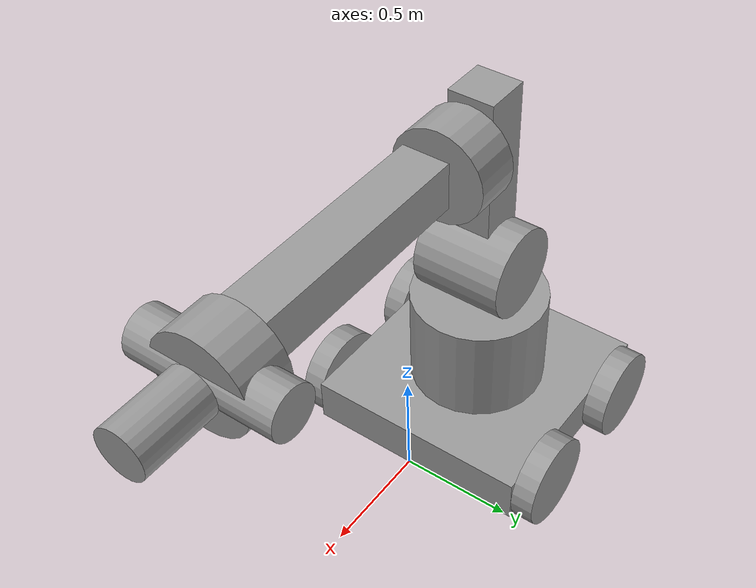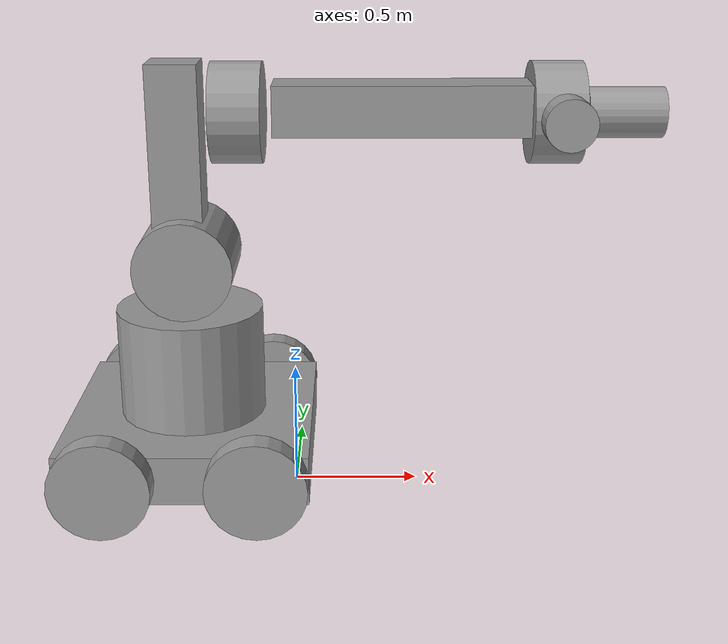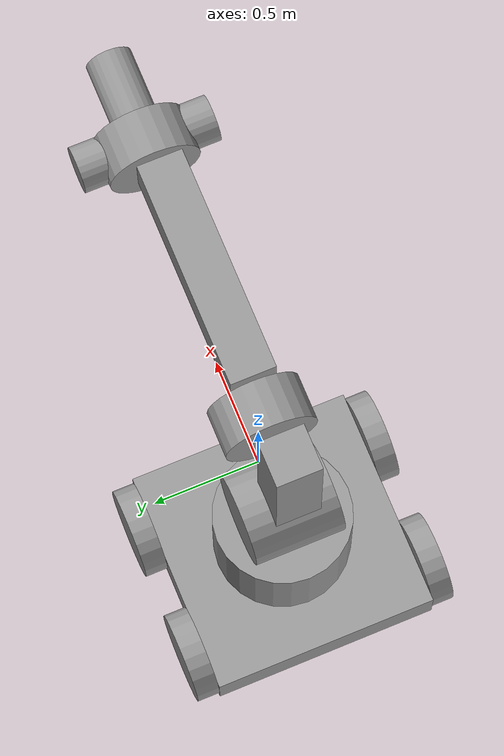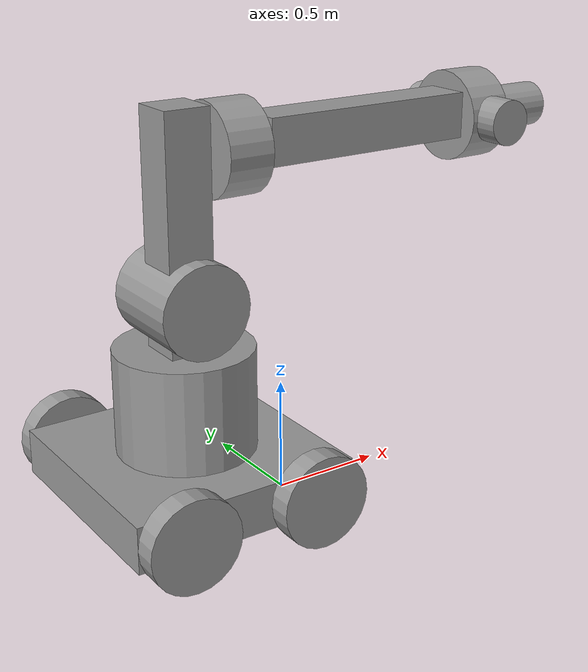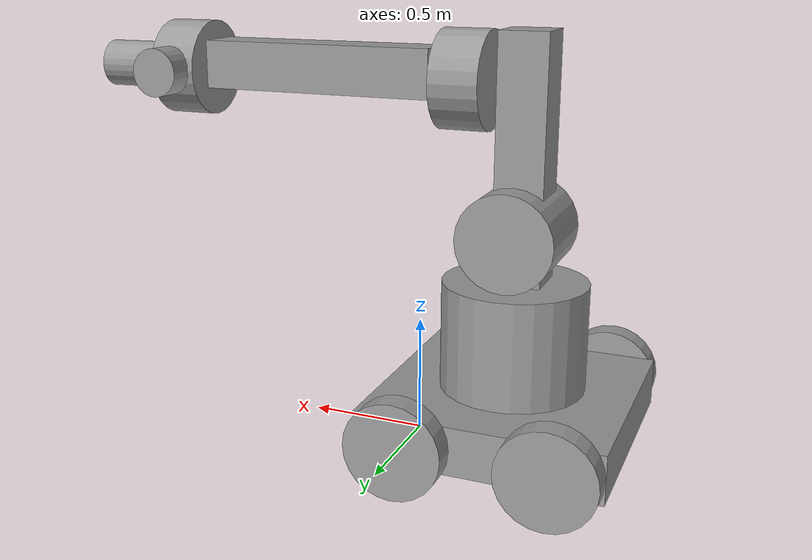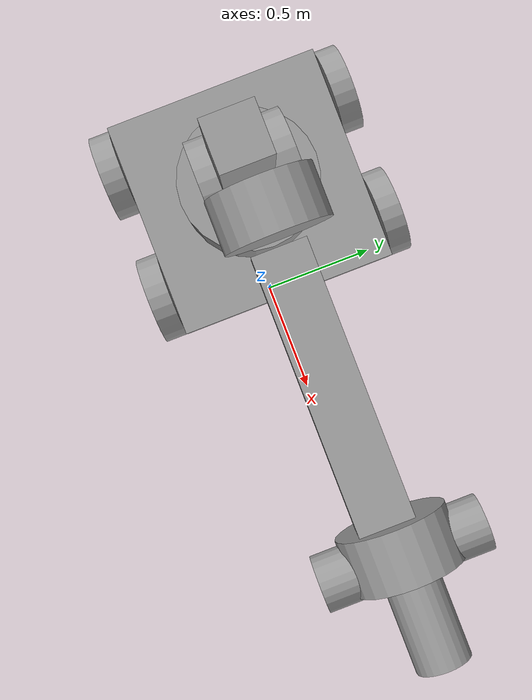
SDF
<?xml version='1.0'?>
<sdf version='1.6'>
  <model name='myModel'>
    <link name='link_0'>
      <pose frame=''>-0.433887 0.068014 0.2 0 -0 0</pose>
      <inertial>
        <mass>1</mass>
        <inertia>
          <ixx>0.166667</ixx>
          <ixy>0</ixy>
          <ixz>0</ixz>
          <iyy>0.166667</iyy>
          <iyz>0</iyz>
          <izz>0.166667</izz>
        </inertia>
        <pose frame=''>0 0 0 0 -0 0</pose>
      </inertial>
      <self_collide>0</self_collide>
      <kinematic>0</kinematic>
      <visual name='visual'>
        <pose frame=''>0 0 0 0 -0 0</pose>
        <geometry>
          <box>
            <size>1 1 0.2</size>
          </box>
        </geometry>
        <material>
          <lighting>1</lighting>
          <script>
            <uri>file://media/materials/scripts/gazebo.material</uri>
            <name>Gazebo/Grey</name>
          </script>
          <ambient>0.3 0.3 0.3 1</ambient>
          <diffuse>0.7 0.7 0.7 1</diffuse>
          <specular>0.01 0.01 0.01 1</specular>
          <emissive>0 0 0 1</emissive>
          <shader type='vertex'>
            <normal_map>__default__</normal_map>
          </shader>
        </material>
        <transparency>0</transparency>
        <cast_shadows>1</cast_shadows>
      </visual>
      <collision name='collision'>
        <laser_retro>0</laser_retro>
        <max_contacts>10</max_contacts>
        <pose frame=''>0 0 0 0 -0 0</pose>
        <geometry>
          <box>
            <size>1 1 0.2</size>
          </box>
        </geometry>
        <surface>
          <friction>
            <ode>
              <mu>1</mu>
              <mu2>1</mu2>
              <fdir1>0 0 0</fdir1>
              <slip1>0</slip1>
              <slip2>0</slip2>
            </ode>
            <torsional>
              <coefficient>1</coefficient>
              <patch_radius>0</patch_radius>
              <surface_radius>0</surface_radius>
              <use_patch_radius>1</use_patch_radius>
              <ode>
                <slip>0</slip>
              </ode>
            </torsional>
          </friction>
          <bounce>
            <restitution_coefficient>0</restitution_coefficient>
            <threshold>1e+06</threshold>
          </bounce>
          <contact>
            <collide_without_contact>0</collide_without_contact>
            <collide_without_contact_bitmask>1</collide_without_contact_bitmask>
            <collide_bitmask>1</collide_bitmask>
            <ode>
              <soft_cfm>0</soft_cfm>
              <soft_erp>0.2</soft_erp>
              <kp>1e+13</kp>
              <kd>1</kd>
              <max_vel>0.01</max_vel>
              <min_depth>0</min_depth>
            </ode>
            <bullet>
              <split_impulse>1</split_impulse>
              <split_impulse_penetration_threshold>-0.01</split_impulse_penetration_threshold>
              <soft_cfm>0</soft_cfm>
              <soft_erp>0.2</soft_erp>
              <kp>1e+13</kp>
              <kd>1</kd>
            </bullet>
          </contact>
        </surface>
      </collision>
    </link>
    <link name='link_0_0'>
      <pose frame=''>-0.433887 0.068014 0.5 0 -0 0</pose>
      <inertial>
        <mass>1</mass>
        <inertia>
          <ixx>0.145833</ixx>
          <ixy>0</ixy>
          <ixz>0</ixz>
          <iyy>0.145833</iyy>
          <iyz>0</iyz>
          <izz>0.125</izz>
        </inertia>
        <pose frame=''>0 0 0 0 -0 0</pose>
      </inertial>
      <self_collide>0</self_collide>
      <kinematic>0</kinematic>
      <visual name='visual'>
        <pose frame=''>0 0 0 0 -0 0</pose>
        <geometry>
          <cylinder>
            <radius>0.3</radius>
            <length>0.5</length>
          </cylinder>
        </geometry>
        <material>
          <lighting>1</lighting>
          <script>
            <uri>file://media/materials/scripts/gazebo.material</uri>
            <name>Gazebo/Grey</name>
          </script>
          <ambient>0.3 0.3 0.3 1</ambient>
          <diffuse>0.7 0.7 0.7 1</diffuse>
          <specular>0.01 0.01 0.01 1</specular>
          <emissive>0 0 0 1</emissive>
          <shader type='vertex'>
            <normal_map>__default__</normal_map>
          </shader>
        </material>
        <transparency>0</transparency>
        <cast_shadows>1</cast_shadows>
      </visual>
      <collision name='collision'>
        <laser_retro>0</laser_retro>
        <max_contacts>10</max_contacts>
        <pose frame=''>0 0 0 0 -0 0</pose>
        <geometry>
          <cylinder>
            <radius>0.3</radius>
            <length>0.5</length>
          </cylinder>
        </geometry>
        <surface>
          <friction>
            <ode>
              <mu>1</mu>
              <mu2>1</mu2>
              <fdir1>0 0 0</fdir1>
              <slip1>0</slip1>
              <slip2>0</slip2>
            </ode>
            <torsional>
              <coefficient>1</coefficient>
              <patch_radius>0</patch_radius>
              <surface_radius>0</surface_radius>
              <use_patch_radius>1</use_patch_radius>
              <ode>
                <slip>0</slip>
              </ode>
            </torsional>
          </friction>
          <bounce>
            <restitution_coefficient>0</restitution_coefficient>
            <threshold>1e+06</threshold>
          </bounce>
          <contact>
            <collide_without_contact>0</collide_without_contact>
            <collide_without_contact_bitmask>1</collide_without_contact_bitmask>
            <collide_bitmask>1</collide_bitmask>
            <ode>
              <soft_cfm>0</soft_cfm>
              <soft_erp>0.2</soft_erp>
              <kp>1e+13</kp>
              <kd>1</kd>
              <max_vel>0.01</max_vel>
              <min_depth>0</min_depth>
            </ode>
            <bullet>
              <split_impulse>1</split_impulse>
              <split_impulse_penetration_threshold>-0.01</split_impulse_penetration_threshold>
              <soft_cfm>0</soft_cfm>
              <soft_erp>0.2</soft_erp>
              <kp>1e+13</kp>
              <kd>1</kd>
            </bullet>
          </contact>
        </surface>
      </collision>
    </link>
    <link name='link_1'>
      <pose frame=''>-0.133887 -0.482005 0.2 1.5707 -0 0</pose>
      <inertial>
        <mass>1</mass>
        <inertia>
          <ixx>0.145833</ixx>
          <ixy>0</ixy>
          <ixz>0</ixz>
          <iyy>0.145833</iyy>
          <iyz>0</iyz>
          <izz>0.125</izz>
        </inertia>
        <pose frame=''>0 0 0 0 -0 0</pose>
      </inertial>
      <self_collide>0</self_collide>
      <kinematic>0</kinematic>
      <visual name='visual'>
        <pose frame=''>0 0 0 0 -0 0</pose>
        <geometry>
          <cylinder>
            <radius>0.2</radius>
            <length>0.1</length>
          </cylinder>
        </geometry>
        <material>
          <lighting>1</lighting>
          <script>
            <uri>file://media/materials/scripts/gazebo.material</uri>
            <name>Gazebo/Grey</name>
          </script>
          <ambient>0.3 0.3 0.3 1</ambient>
          <diffuse>0.7 0.7 0.7 1</diffuse>
          <specular>0.01 0.01 0.01 1</specular>
          <emissive>0 0 0 1</emissive>
          <shader type='vertex'>
            <normal_map>__default__</normal_map>
          </shader>
        </material>
        <transparency>0</transparency>
        <cast_shadows>1</cast_shadows>
      </visual>
      <collision name='collision'>
        <laser_retro>0</laser_retro>
        <max_contacts>10</max_contacts>
        <pose frame=''>0 0 0 0 -0 0</pose>
        <geometry>
          <cylinder>
            <radius>0.2</radius>
            <length>0.1</length>
          </cylinder>
        </geometry>
        <surface>
          <friction>
            <ode>
              <mu>1</mu>
              <mu2>1</mu2>
              <fdir1>0 0 0</fdir1>
              <slip1>0</slip1>
              <slip2>0</slip2>
            </ode>
            <torsional>
              <coefficient>1</coefficient>
              <patch_radius>0</patch_radius>
              <surface_radius>0</surface_radius>
              <use_patch_radius>1</use_patch_radius>
              <ode>
                <slip>0</slip>
              </ode>
            </torsional>
          </friction>
          <bounce>
            <restitution_coefficient>0</restitution_coefficient>
            <threshold>1e+06</threshold>
          </bounce>
          <contact>
            <collide_without_contact>0</collide_without_contact>
            <collide_without_contact_bitmask>1</collide_without_contact_bitmask>
            <collide_bitmask>1</collide_bitmask>
            <ode>
              <soft_cfm>0</soft_cfm>
              <soft_erp>0.2</soft_erp>
              <kp>1e+13</kp>
              <kd>1</kd>
              <max_vel>0.01</max_vel>
              <min_depth>0</min_depth>
            </ode>
            <bullet>
              <split_impulse>1</split_impulse>
              <split_impulse_penetration_threshold>-0.01</split_impulse_penetration_threshold>
              <soft_cfm>0</soft_cfm>
              <soft_erp>0.2</soft_erp>
              <kp>1e+13</kp>
              <kd>1</kd>
            </bullet>
          </contact>
        </surface>
      </collision>
    </link>
    <link name='link_1_0'>
      <pose frame=''>-0.433887 0.068014 0.950019 1.5707 -0 0</pose>
      <inertial>
        <mass>1</mass>
        <inertia>
          <ixx>0.145833</ixx>
          <ixy>0</ixy>
          <ixz>0</ixz>
          <iyy>0.145833</iyy>
          <iyz>0</iyz>
          <izz>0.125</izz>
        </inertia>
        <pose frame=''>0 0 0 0 -0 0</pose>
      </inertial>
      <self_collide>0</self_collide>
      <kinematic>0</kinematic>
      <visual name='visual'>
        <pose frame=''>0 0 0 0 -0 0</pose>
        <geometry>
          <cylinder>
            <radius>0.2</radius>
            <length>0.4</length>
          </cylinder>
        </geometry>
        <material>
          <lighting>1</lighting>
          <script>
            <uri>file://media/materials/scripts/gazebo.material</uri>
            <name>Gazebo/Grey</name>
          </script>
          <ambient>0.3 0.3 0.3 1</ambient>
          <diffuse>0.7 0.7 0.7 1</diffuse>
          <specular>0.01 0.01 0.01 1</specular>
          <emissive>0 0 0 1</emissive>
          <shader type='vertex'>
            <normal_map>__default__</normal_map>
          </shader>
        </material>
        <transparency>0</transparency>
        <cast_shadows>1</cast_shadows>
      </visual>
      <collision name='collision'>
        <laser_retro>0</laser_retro>
        <max_contacts>10</max_contacts>
        <pose frame=''>0 0 0 0 -0 0</pose>
        <geometry>
          <cylinder>
            <radius>0.2</radius>
            <length>0.4</length>
          </cylinder>
        </geometry>
        <surface>
          <friction>
            <ode>
              <mu>1</mu>
              <mu2>1</mu2>
              <fdir1>0 0 0</fdir1>
              <slip1>0</slip1>
              <slip2>0</slip2>
            </ode>
            <torsional>
              <coefficient>1</coefficient>
              <patch_radius>0</patch_radius>
              <surface_radius>0</surface_radius>
              <use_patch_radius>1</use_patch_radius>
              <ode>
                <slip>0</slip>
              </ode>
            </torsional>
          </friction>
          <bounce>
            <restitution_coefficient>0</restitution_coefficient>
            <threshold>1e+06</threshold>
          </bounce>
          <contact>
            <collide_without_contact>0</collide_without_contact>
            <collide_without_contact_bitmask>1</collide_without_contact_bitmask>
            <collide_bitmask>1</collide_bitmask>
            <ode>
              <soft_cfm>0</soft_cfm>
              <soft_erp>0.2</soft_erp>
              <kp>1e+13</kp>
              <kd>1</kd>
              <max_vel>0.01</max_vel>
              <min_depth>0</min_depth>
            </ode>
            <bullet>
              <split_impulse>1</split_impulse>
              <split_impulse_penetration_threshold>-0.01</split_impulse_penetration_threshold>
              <soft_cfm>0</soft_cfm>
              <soft_erp>0.2</soft_erp>
              <kp>1e+13</kp>
              <kd>1</kd>
            </bullet>
          </contact>
        </surface>
      </collision>
    </link>
    <link name='link_1_clone'>
      <pose frame=''>-0.733887 -0.482005 0.2 1.5707 -0 0</pose>
      <inertial>
        <mass>1</mass>
        <inertia>
          <ixx>0.145833</ixx>
          <ixy>0</ixy>
          <ixz>0</ixz>
          <iyy>0.145833</iyy>
          <iyz>0</iyz>
          <izz>0.125</izz>
        </inertia>
        <pose frame=''>0 0 0 0 -0 0</pose>
      </inertial>
      <self_collide>0</self_collide>
      <kinematic>0</kinematic>
      <visual name='visual'>
        <pose frame=''>0 0 0 0 -0 0</pose>
        <geometry>
          <cylinder>
            <radius>0.2</radius>
            <length>0.1</length>
          </cylinder>
        </geometry>
        <material>
          <lighting>1</lighting>
          <script>
            <uri>file://media/materials/scripts/gazebo.material</uri>
            <name>Gazebo/Grey</name>
          </script>
          <ambient>0.3 0.3 0.3 1</ambient>
          <diffuse>0.7 0.7 0.7 1</diffuse>
          <specular>0.01 0.01 0.01 1</specular>
          <emissive>0 0 0 1</emissive>
          <shader type='vertex'>
            <normal_map>__default__</normal_map>
          </shader>
        </material>
        <transparency>0</transparency>
        <cast_shadows>1</cast_shadows>
      </visual>
      <collision name='collision'>
        <laser_retro>0</laser_retro>
        <max_contacts>10</max_contacts>
        <pose frame=''>0 0 0 0 -0 0</pose>
        <geometry>
          <cylinder>
            <radius>0.2</radius>
            <length>0.1</length>
          </cylinder>
        </geometry>
        <surface>
          <friction>
            <ode>
              <mu>1</mu>
              <mu2>1</mu2>
              <fdir1>0 0 0</fdir1>
              <slip1>0</slip1>
              <slip2>0</slip2>
            </ode>
            <torsional>
              <coefficient>1</coefficient>
              <patch_radius>0</patch_radius>
              <surface_radius>0</surface_radius>
              <use_patch_radius>1</use_patch_radius>
              <ode>
                <slip>0</slip>
              </ode>
            </torsional>
          </friction>
          <bounce>
            <restitution_coefficient>0</restitution_coefficient>
            <threshold>1e+06</threshold>
          </bounce>
          <contact>
            <collide_without_contact>0</collide_without_contact>
            <collide_without_contact_bitmask>1</collide_without_contact_bitmask>
            <collide_bitmask>1</collide_bitmask>
            <ode>
              <soft_cfm>0</soft_cfm>
              <soft_erp>0.2</soft_erp>
              <kp>1e+13</kp>
              <kd>1</kd>
              <max_vel>0.01</max_vel>
              <min_depth>0</min_depth>
            </ode>
            <bullet>
              <split_impulse>1</split_impulse>
              <split_impulse_penetration_threshold>-0.01</split_impulse_penetration_threshold>
              <soft_cfm>0</soft_cfm>
              <soft_erp>0.2</soft_erp>
              <kp>1e+13</kp>
              <kd>1</kd>
            </bullet>
          </contact>
        </surface>
      </collision>
    </link>
    <link name='link_1_clone_clone'>
      <pose frame=''>-0.733887 0.618033 0.2 1.5707 -0 0</pose>
      <inertial>
        <mass>1</mass>
        <inertia>
          <ixx>0.145833</ixx>
          <ixy>0</ixy>
          <ixz>0</ixz>
          <iyy>0.145833</iyy>
          <iyz>0</iyz>
          <izz>0.125</izz>
        </inertia>
        <pose frame=''>0 0 0 0 -0 0</pose>
      </inertial>
      <self_collide>0</self_collide>
      <kinematic>0</kinematic>
      <visual name='visual'>
        <pose frame=''>0 0 0 0 -0 0</pose>
        <geometry>
          <cylinder>
            <radius>0.2</radius>
            <length>0.1</length>
          </cylinder>
        </geometry>
        <material>
          <lighting>1</lighting>
          <script>
            <uri>file://media/materials/scripts/gazebo.material</uri>
            <name>Gazebo/Grey</name>
          </script>
          <ambient>0.3 0.3 0.3 1</ambient>
          <diffuse>0.7 0.7 0.7 1</diffuse>
          <specular>0.01 0.01 0.01 1</specular>
          <emissive>0 0 0 1</emissive>
          <shader type='vertex'>
            <normal_map>__default__</normal_map>
          </shader>
        </material>
        <transparency>0</transparency>
        <cast_shadows>1</cast_shadows>
      </visual>
      <collision name='collision'>
        <laser_retro>0</laser_retro>
        <max_contacts>10</max_contacts>
        <pose frame=''>0 0 0 0 -0 0</pose>
        <geometry>
          <cylinder>
            <radius>0.2</radius>
            <length>0.1</length>
          </cylinder>
        </geometry>
        <surface>
          <friction>
            <ode>
              <mu>1</mu>
              <mu2>1</mu2>
              <fdir1>0 0 0</fdir1>
              <slip1>0</slip1>
              <slip2>0</slip2>
            </ode>
            <torsional>
              <coefficient>1</coefficient>
              <patch_radius>0</patch_radius>
              <surface_radius>0</surface_radius>
              <use_patch_radius>1</use_patch_radius>
              <ode>
                <slip>0</slip>
              </ode>
            </torsional>
          </friction>
          <bounce>
            <restitution_coefficient>0</restitution_coefficient>
            <threshold>1e+06</threshold>
          </bounce>
          <contact>
            <collide_without_contact>0</collide_without_contact>
            <collide_without_contact_bitmask>1</collide_without_contact_bitmask>
            <collide_bitmask>1</collide_bitmask>
            <ode>
              <soft_cfm>0</soft_cfm>
              <soft_erp>0.2</soft_erp>
              <kp>1e+13</kp>
              <kd>1</kd>
              <max_vel>0.01</max_vel>
              <min_depth>0</min_depth>
            </ode>
            <bullet>
              <split_impulse>1</split_impulse>
              <split_impulse_penetration_threshold>-0.01</split_impulse_penetration_threshold>
              <soft_cfm>0</soft_cfm>
              <soft_erp>0.2</soft_erp>
              <kp>1e+13</kp>
              <kd>1</kd>
            </bullet>
          </contact>
        </surface>
      </collision>
    </link>
    <link name='link_1_clone_clone_clone'>
      <pose frame=''>-0.133887 0.618033 0.2 1.5707 -0 0</pose>
      <inertial>
        <mass>1</mass>
        <inertia>
          <ixx>0.145833</ixx>
          <ixy>0</ixy>
          <ixz>0</ixz>
          <iyy>0.145833</iyy>
          <iyz>0</iyz>
          <izz>0.125</izz>
        </inertia>
        <pose frame=''>0 0 0 0 -0 0</pose>
      </inertial>
      <self_collide>0</self_collide>
      <kinematic>0</kinematic>
      <visual name='visual'>
        <pose frame=''>0 0 0 0 -0 0</pose>
        <geometry>
          <cylinder>
            <radius>0.2</radius>
            <length>0.1</length>
          </cylinder>
        </geometry>
        <material>
          <lighting>1</lighting>
          <script>
            <uri>file://media/materials/scripts/gazebo.material</uri>
            <name>Gazebo/Grey</name>
          </script>
          <ambient>0.3 0.3 0.3 1</ambient>
          <diffuse>0.7 0.7 0.7 1</diffuse>
          <specular>0.01 0.01 0.01 1</specular>
          <emissive>0 0 0 1</emissive>
          <shader type='vertex'>
            <normal_map>__default__</normal_map>
          </shader>
        </material>
        <transparency>0</transparency>
        <cast_shadows>1</cast_shadows>
      </visual>
      <collision name='collision'>
        <laser_retro>0</laser_retro>
        <max_contacts>10</max_contacts>
        <pose frame=''>0 0 0 0 -0 0</pose>
        <geometry>
          <cylinder>
            <radius>0.2</radius>
            <length>0.1</length>
          </cylinder>
        </geometry>
        <surface>
          <friction>
            <ode>
              <mu>1</mu>
              <mu2>1</mu2>
              <fdir1>0 0 0</fdir1>
              <slip1>0</slip1>
              <slip2>0</slip2>
            </ode>
            <torsional>
              <coefficient>1</coefficient>
              <patch_radius>0</patch_radius>
              <surface_radius>0</surface_radius>
              <use_patch_radius>1</use_patch_radius>
              <ode>
                <slip>0</slip>
              </ode>
            </torsional>
          </friction>
          <bounce>
            <restitution_coefficient>0</restitution_coefficient>
            <threshold>1e+06</threshold>
          </bounce>
          <contact>
            <collide_without_contact>0</collide_without_contact>
            <collide_without_contact_bitmask>1</collide_without_contact_bitmask>
            <collide_bitmask>1</collide_bitmask>
            <ode>
              <soft_cfm>0</soft_cfm>
              <soft_erp>0.2</soft_erp>
              <kp>1e+13</kp>
              <kd>1</kd>
              <max_vel>0.01</max_vel>
              <min_depth>0</min_depth>
            </ode>
            <bullet>
              <split_impulse>1</split_impulse>
              <split_impulse_penetration_threshold>-0.01</split_impulse_penetration_threshold>
              <soft_cfm>0</soft_cfm>
              <soft_erp>0.2</soft_erp>
              <kp>1e+13</kp>
              <kd>1</kd>
            </bullet>
          </contact>
        </surface>
      </collision>
    </link>
    <link name='link_2'>
      <pose frame=''>-0.453887 0.048014 1.25 0 -0 0</pose>
      <inertial>
        <mass>1</mass>
        <inertia>
          <ixx>0.166667</ixx>
          <ixy>0</ixy>
          <ixz>0</ixz>
          <iyy>0.166667</iyy>
          <iyz>0</iyz>
          <izz>0.166667</izz>
        </inertia>
        <pose frame=''>0 0 0 0 -0 0</pose>
      </inertial>
      <self_collide>0</self_collide>
      <kinematic>0</kinematic>
      <visual name='visual'>
        <pose frame=''>0 0 0 0 -0 0</pose>
        <geometry>
          <box>
            <size>0.2 0.2 1</size>
          </box>
        </geometry>
        <material>
          <lighting>1</lighting>
          <script>
            <uri>file://media/materials/scripts/gazebo.material</uri>
            <name>Gazebo/Grey</name>
          </script>
          <ambient>0.3 0.3 0.3 1</ambient>
          <diffuse>0.7 0.7 0.7 1</diffuse>
          <specular>0.01 0.01 0.01 1</specular>
          <emissive>0 0 0 1</emissive>
          <shader type='vertex'>
            <normal_map>__default__</normal_map>
          </shader>
        </material>
        <transparency>0</transparency>
        <cast_shadows>1</cast_shadows>
      </visual>
      <collision name='collision'>
        <laser_retro>0</laser_retro>
        <max_contacts>10</max_contacts>
        <pose frame=''>0 0 0 0 -0 0</pose>
        <geometry>
          <box>
            <size>0.2 0.2 1</size>
          </box>
        </geometry>
        <surface>
          <friction>
            <ode>
              <mu>1</mu>
              <mu2>1</mu2>
              <fdir1>0 0 0</fdir1>
              <slip1>0</slip1>
              <slip2>0</slip2>
            </ode>
            <torsional>
              <coefficient>1</coefficient>
              <patch_radius>0</patch_radius>
              <surface_radius>0</surface_radius>
              <use_patch_radius>1</use_patch_radius>
              <ode>
                <slip>0</slip>
              </ode>
            </torsional>
          </friction>
          <bounce>
            <restitution_coefficient>0</restitution_coefficient>
            <threshold>1e+06</threshold>
          </bounce>
          <contact>
            <collide_without_contact>0</collide_without_contact>
            <collide_without_contact_bitmask>1</collide_without_contact_bitmask>
            <collide_bitmask>1</collide_bitmask>
            <ode>
              <soft_cfm>0</soft_cfm>
              <soft_erp>0.2</soft_erp>
              <kp>1e+13</kp>
              <kd>1</kd>
              <max_vel>0.01</max_vel>
              <min_depth>0</min_depth>
            </ode>
            <bullet>
              <split_impulse>1</split_impulse>
              <split_impulse_penetration_threshold>-0.01</split_impulse_penetration_threshold>
              <soft_cfm>0</soft_cfm>
              <soft_erp>0.2</soft_erp>
              <kp>1e+13</kp>
              <kd>1</kd>
            </bullet>
          </contact>
        </surface>
      </collision>
    </link>
    <link name='link_3'>
      <pose frame=''>-0.213868 0.068014 1.54999 7e-06 1.5707 7e-06</pose>
      <inertial>
        <mass>1</mass>
        <inertia>
          <ixx>0.145833</ixx>
          <ixy>0</ixy>
          <ixz>0</ixz>
          <iyy>0.145833</iyy>
          <iyz>0</iyz>
          <izz>0.125</izz>
        </inertia>
        <pose frame=''>0 0 0 0 -0 0</pose>
      </inertial>
      <self_collide>0</self_collide>
      <kinematic>0</kinematic>
      <visual name='visual'>
        <pose frame=''>0 0 0 0 -0 0</pose>
        <geometry>
          <cylinder>
            <radius>0.2</radius>
            <length>0.2</length>
          </cylinder>
        </geometry>
        <material>
          <lighting>1</lighting>
          <script>
            <uri>file://media/materials/scripts/gazebo.material</uri>
            <name>Gazebo/Grey</name>
          </script>
          <ambient>0.3 0.3 0.3 1</ambient>
          <diffuse>0.7 0.7 0.7 1</diffuse>
          <specular>0.01 0.01 0.01 1</specular>
          <emissive>0 0 0 1</emissive>
          <shader type='vertex'>
            <normal_map>__default__</normal_map>
          </shader>
        </material>
        <transparency>0</transparency>
        <cast_shadows>1</cast_shadows>
      </visual>
      <collision name='collision'>
        <laser_retro>0</laser_retro>
        <max_contacts>10</max_contacts>
        <pose frame=''>0 0 0 0 -0 0</pose>
        <geometry>
          <cylinder>
            <radius>0.2</radius>
            <length>0.2</length>
          </cylinder>
        </geometry>
        <surface>
          <friction>
            <ode>
              <mu>1</mu>
              <mu2>1</mu2>
              <fdir1>0 0 0</fdir1>
              <slip1>0</slip1>
              <slip2>0</slip2>
            </ode>
            <torsional>
              <coefficient>1</coefficient>
              <patch_radius>0</patch_radius>
              <surface_radius>0</surface_radius>
              <use_patch_radius>1</use_patch_radius>
              <ode>
                <slip>0</slip>
              </ode>
            </torsional>
          </friction>
          <bounce>
            <restitution_coefficient>0</restitution_coefficient>
            <threshold>1e+06</threshold>
          </bounce>
          <contact>
            <collide_without_contact>0</collide_without_contact>
            <collide_without_contact_bitmask>1</collide_without_contact_bitmask>
            <collide_bitmask>1</collide_bitmask>
            <ode>
              <soft_cfm>0</soft_cfm>
              <soft_erp>0.2</soft_erp>
              <kp>1e+13</kp>
              <kd>1</kd>
              <max_vel>0.01</max_vel>
              <min_depth>0</min_depth>
            </ode>
            <bullet>
              <split_impulse>1</split_impulse>
              <split_impulse_penetration_threshold>-0.01</split_impulse_penetration_threshold>
              <soft_cfm>0</soft_cfm>
              <soft_erp>0.2</soft_erp>
              <kp>1e+13</kp>
              <kd>1</kd>
            </bullet>
          </contact>
        </surface>
      </collision>
    </link>
    <link name='link_4'>
      <pose frame=''>0.426161 0.048014 1.56999 7e-06 1.5707 7e-06</pose>
      <inertial>
        <mass>1</mass>
        <inertia>
          <ixx>0.166667</ixx>
          <ixy>0</ixy>
          <ixz>0</ixz>
          <iyy>0.166667</iyy>
          <iyz>0</iyz>
          <izz>0.166667</izz>
        </inertia>
        <pose frame=''>0 0 0 0 -0 0</pose>
      </inertial>
      <self_collide>0</self_collide>
      <kinematic>0</kinematic>
      <visual name='visual'>
        <pose frame=''>0 0 0 0 -0 0</pose>
        <geometry>
          <box>
            <size>0.2 0.2 1</size>
          </box>
        </geometry>
        <material>
          <lighting>1</lighting>
          <script>
            <uri>file://media/materials/scripts/gazebo.material</uri>
            <name>Gazebo/Grey</name>
          </script>
          <ambient>0.3 0.3 0.3 1</ambient>
          <diffuse>0.7 0.7 0.7 1</diffuse>
          <specular>0.01 0.01 0.01 1</specular>
          <emissive>0 0 0 1</emissive>
          <shader type='vertex'>
            <normal_map>__default__</normal_map>
          </shader>
        </material>
        <transparency>0</transparency>
        <cast_shadows>1</cast_shadows>
      </visual>
      <collision name='collision'>
        <laser_retro>0</laser_retro>
        <max_contacts>10</max_contacts>
        <pose frame=''>0 0 0 0 -0 0</pose>
        <geometry>
          <box>
            <size>0.2 0.2 1</size>
          </box>
        </geometry>
        <surface>
          <friction>
            <ode>
              <mu>1</mu>
              <mu2>1</mu2>
              <fdir1>0 0 0</fdir1>
              <slip1>0</slip1>
              <slip2>0</slip2>
            </ode>
            <torsional>
              <coefficient>1</coefficient>
              <patch_radius>0</patch_radius>
              <surface_radius>0</surface_radius>
              <use_patch_radius>1</use_patch_radius>
              <ode>
                <slip>0</slip>
              </ode>
            </torsional>
          </friction>
          <bounce>
            <restitution_coefficient>0</restitution_coefficient>
            <threshold>1e+06</threshold>
          </bounce>
          <contact>
            <collide_without_contact>0</collide_without_contact>
            <collide_without_contact_bitmask>1</collide_without_contact_bitmask>
            <collide_bitmask>1</collide_bitmask>
            <ode>
              <soft_cfm>0</soft_cfm>
              <soft_erp>0.2</soft_erp>
              <kp>1e+13</kp>
              <kd>1</kd>
              <max_vel>0.01</max_vel>
              <min_depth>0</min_depth>
            </ode>
            <bullet>
              <split_impulse>1</split_impulse>
              <split_impulse_penetration_threshold>-0.01</split_impulse_penetration_threshold>
              <soft_cfm>0</soft_cfm>
              <soft_erp>0.2</soft_erp>
              <kp>1e+13</kp>
              <kd>1</kd>
            </bullet>
          </contact>
        </surface>
      </collision>
    </link>
    <link name='link_5'>
      <pose frame=''>1.02619 0.068014 1.54999 7e-06 1.5707 7e-06</pose>
      <inertial>
        <mass>1</mass>
        <inertia>
          <ixx>0.145833</ixx>
          <ixy>0</ixy>
          <ixz>0</ixz>
          <iyy>0.145833</iyy>
          <iyz>0</iyz>
          <izz>0.125</izz>
        </inertia>
        <pose frame=''>0 0 0 0 -0 0</pose>
      </inertial>
      <self_collide>0</self_collide>
      <kinematic>0</kinematic>
      <visual name='visual'>
        <pose frame=''>0 0 0 0 -0 0</pose>
        <geometry>
          <cylinder>
            <radius>0.2</radius>
            <length>0.2</length>
          </cylinder>
        </geometry>
        <material>
          <lighting>1</lighting>
          <script>
            <uri>file://media/materials/scripts/gazebo.material</uri>
            <name>Gazebo/Grey</name>
          </script>
          <ambient>0.3 0.3 0.3 1</ambient>
          <diffuse>0.7 0.7 0.7 1</diffuse>
          <specular>0.01 0.01 0.01 1</specular>
          <emissive>0 0 0 1</emissive>
          <shader type='vertex'>
            <normal_map>__default__</normal_map>
          </shader>
        </material>
        <transparency>0</transparency>
        <cast_shadows>1</cast_shadows>
      </visual>
      <collision name='collision'>
        <laser_retro>0</laser_retro>
        <max_contacts>10</max_contacts>
        <pose frame=''>0 0 0 0 -0 0</pose>
        <geometry>
          <cylinder>
            <radius>0.2</radius>
            <length>0.2</length>
          </cylinder>
        </geometry>
        <surface>
          <friction>
            <ode>
              <mu>1</mu>
              <mu2>1</mu2>
              <fdir1>0 0 0</fdir1>
              <slip1>0</slip1>
              <slip2>0</slip2>
            </ode>
            <torsional>
              <coefficient>1</coefficient>
              <patch_radius>0</patch_radius>
              <surface_radius>0</surface_radius>
              <use_patch_radius>1</use_patch_radius>
              <ode>
                <slip>0</slip>
              </ode>
            </torsional>
          </friction>
          <bounce>
            <restitution_coefficient>0</restitution_coefficient>
            <threshold>1e+06</threshold>
          </bounce>
          <contact>
            <collide_without_contact>0</collide_without_contact>
            <collide_without_contact_bitmask>1</collide_without_contact_bitmask>
            <collide_bitmask>1</collide_bitmask>
            <ode>
              <soft_cfm>0</soft_cfm>
              <soft_erp>0.2</soft_erp>
              <kp>1e+13</kp>
              <kd>1</kd>
              <max_vel>0.01</max_vel>
              <min_depth>0</min_depth>
            </ode>
            <bullet>
              <split_impulse>1</split_impulse>
              <split_impulse_penetration_threshold>-0.01</split_impulse_penetration_threshold>
              <soft_cfm>0</soft_cfm>
              <soft_erp>0.2</soft_erp>
              <kp>1e+13</kp>
              <kd>1</kd>
            </bullet>
          </contact>
        </surface>
      </collision>
    </link>
    <link name='link_6'>
      <pose frame=''>1.04619 0.068014 1.54999 1.5707 -0 0</pose>
      <inertial>
        <mass>1</mass>
        <inertia>
          <ixx>0.145833</ixx>
          <ixy>0</ixy>
          <ixz>0</ixz>
          <iyy>0.145833</iyy>
          <iyz>0</iyz>
          <izz>0.125</izz>
        </inertia>
        <pose frame=''>0 0 0 0 -0 0</pose>
      </inertial>
      <self_collide>0</self_collide>
      <kinematic>0</kinematic>
      <visual name='visual'>
        <pose frame=''>0 0 0 0 -0 0</pose>
        <geometry>
          <cylinder>
            <radius>0.1</radius>
            <length>0.6</length>
          </cylinder>
        </geometry>
        <material>
          <lighting>1</lighting>
          <script>
            <uri>file://media/materials/scripts/gazebo.material</uri>
            <name>Gazebo/Grey</name>
          </script>
          <ambient>0.3 0.3 0.3 1</ambient>
          <diffuse>0.7 0.7 0.7 1</diffuse>
          <specular>0.01 0.01 0.01 1</specular>
          <emissive>0 0 0 1</emissive>
          <shader type='vertex'>
            <normal_map>__default__</normal_map>
          </shader>
        </material>
        <transparency>0</transparency>
        <cast_shadows>1</cast_shadows>
      </visual>
      <collision name='collision'>
        <laser_retro>0</laser_retro>
        <max_contacts>10</max_contacts>
        <pose frame=''>0 0 0 0 -0 0</pose>
        <geometry>
          <cylinder>
            <radius>0.1</radius>
            <length>0.6</length>
          </cylinder>
        </geometry>
        <surface>
          <friction>
            <ode>
              <mu>1</mu>
              <mu2>1</mu2>
              <fdir1>0 0 0</fdir1>
              <slip1>0</slip1>
              <slip2>0</slip2>
            </ode>
            <torsional>
              <coefficient>1</coefficient>
              <patch_radius>0</patch_radius>
              <surface_radius>0</surface_radius>
              <use_patch_radius>1</use_patch_radius>
              <ode>
                <slip>0</slip>
              </ode>
            </torsional>
          </friction>
          <bounce>
            <restitution_coefficient>0</restitution_coefficient>
            <threshold>1e+06</threshold>
          </bounce>
          <contact>
            <collide_without_contact>0</collide_without_contact>
            <collide_without_contact_bitmask>1</collide_without_contact_bitmask>
            <collide_bitmask>1</collide_bitmask>
            <ode>
              <soft_cfm>0</soft_cfm>
              <soft_erp>0.2</soft_erp>
              <kp>1e+13</kp>
              <kd>1</kd>
              <max_vel>0.01</max_vel>
              <min_depth>0</min_depth>
            </ode>
            <bullet>
              <split_impulse>1</split_impulse>
              <split_impulse_penetration_threshold>-0.01</split_impulse_penetration_threshold>
              <soft_cfm>0</soft_cfm>
              <soft_erp>0.2</soft_erp>
              <kp>1e+13</kp>
              <kd>1</kd>
            </bullet>
          </contact>
        </surface>
      </collision>
    </link>
    <link name='link_7'>
      <pose frame=''>1.29888 0.066312 1.54999 7e-06 1.5707 7e-06</pose>
      <inertial>
        <mass>1</mass>
        <inertia>
          <ixx>0.145833</ixx>
          <ixy>0</ixy>
          <ixz>0</ixz>
          <iyy>0.145833</iyy>
          <iyz>0</iyz>
          <izz>0.125</izz>
        </inertia>
        <pose frame=''>0 0 0 0 -0 0</pose>
      </inertial>
      <self_collide>0</self_collide>
      <kinematic>0</kinematic>
      <visual name='visual'>
        <pose frame=''>0 0 0 0 -0 0</pose>
        <geometry>
          <cylinder>
            <radius>0.1</radius>
            <length>0.3</length>
          </cylinder>
        </geometry>
        <material>
          <lighting>1</lighting>
          <script>
            <uri>file://media/materials/scripts/gazebo.material</uri>
            <name>Gazebo/Grey</name>
          </script>
          <ambient>0.3 0.3 0.3 1</ambient>
          <diffuse>0.7 0.7 0.7 1</diffuse>
          <specular>0.01 0.01 0.01 1</specular>
          <emissive>0 0 0 1</emissive>
          <shader type='vertex'>
            <normal_map>__default__</normal_map>
          </shader>
        </material>
        <transparency>0</transparency>
        <cast_shadows>1</cast_shadows>
      </visual>
      <collision name='collision'>
        <laser_retro>0</laser_retro>
        <max_contacts>10</max_contacts>
        <pose frame=''>0 0 0 0 -0 0</pose>
        <geometry>
          <cylinder>
            <radius>0.1</radius>
            <length>0.3</length>
          </cylinder>
        </geometry>
        <surface>
          <friction>
            <ode>
              <mu>1</mu>
              <mu2>1</mu2>
              <fdir1>0 0 0</fdir1>
              <slip1>0</slip1>
              <slip2>0</slip2>
            </ode>
            <torsional>
              <coefficient>1</coefficient>
              <patch_radius>0</patch_radius>
              <surface_radius>0</surface_radius>
              <use_patch_radius>1</use_patch_radius>
              <ode>
                <slip>0</slip>
              </ode>
            </torsional>
          </friction>
          <bounce>
            <restitution_coefficient>0</restitution_coefficient>
            <threshold>1e+06</threshold>
          </bounce>
          <contact>
            <collide_without_contact>0</collide_without_contact>
            <collide_without_contact_bitmask>1</collide_without_contact_bitmask>
            <collide_bitmask>1</collide_bitmask>
            <ode>
              <soft_cfm>0</soft_cfm>
              <soft_erp>0.2</soft_erp>
              <kp>1e+13</kp>
              <kd>1</kd>
              <max_vel>0.01</max_vel>
              <min_depth>0</min_depth>
            </ode>
            <bullet>
              <split_impulse>1</split_impulse>
              <split_impulse_penetration_threshold>-0.01</split_impulse_penetration_threshold>
              <soft_cfm>0</soft_cfm>
              <soft_erp>0.2</soft_erp>
              <kp>1e+13</kp>
              <kd>1</kd>
            </bullet>
          </contact>
        </surface>
      </collision>
    </link>
    <joint name='link_0_0_JOINT_1' type='revolute'>
      <parent>link_0_0</parent>
      <child>link_1_0</child>
      <pose frame=''>0 0 0 0 -0 0</pose>
      <axis>
        <xyz>0 0 1</xyz>
        <use_parent_model_frame>0</use_parent_model_frame>
        <limit>
          <lower>-1.79769e+308</lower>
          <upper>1.79769e+308</upper>
          <effort>-1</effort>
          <velocity>-1</velocity>
        </limit>
        <dynamics>
          <spring_reference>0</spring_reference>
          <spring_stiffness>0</spring_stiffness>
          <damping>0</damping>
          <friction>0</friction>
        </dynamics>
      </axis>
      <physics>
        <ode>
          <limit>
            <cfm>0</cfm>
            <erp>0.2</erp>
          </limit>
          <suspension>
            <cfm>0</cfm>
            <erp>0.2</erp>
          </suspension>
        </ode>
      </physics>
    </joint>
    <joint name='link_0_JOINT_0_0' type='revolute'>
      <parent>link_0</parent>
      <child>link_0_0</child>
      <pose frame=''>0 0 0 0 -0 0</pose>
      <axis>
        <xyz>0 0 1</xyz>
        <use_parent_model_frame>0</use_parent_model_frame>
        <limit>
          <lower>-1.79769e+308</lower>
          <upper>1.79769e+308</upper>
          <effort>-1</effort>
          <velocity>-1</velocity>
        </limit>
        <dynamics>
          <spring_reference>0</spring_reference>
          <spring_stiffness>0</spring_stiffness>
          <damping>0</damping>
          <friction>0</friction>
        </dynamics>
      </axis>
      <physics>
        <ode>
          <limit>
            <cfm>0</cfm>
            <erp>0.2</erp>
          </limit>
          <suspension>
            <cfm>0</cfm>
            <erp>0.2</erp>
          </suspension>
        </ode>
      </physics>
    </joint>
    <joint name='link_0_JOINT_0' type='revolute'>
      <parent>link_0</parent>
      <child>link_1</child>
      <pose frame=''>0 0 0 0 -0 0</pose>
      <axis>
        <xyz>0 0 1</xyz>
        <use_parent_model_frame>0</use_parent_model_frame>
        <limit>
          <lower>-1.79769e+308</lower>
          <upper>1.79769e+308</upper>
          <effort>-1</effort>
          <velocity>-1</velocity>
        </limit>
        <dynamics>
          <spring_reference>0</spring_reference>
          <spring_stiffness>0</spring_stiffness>
          <damping>0</damping>
          <friction>0</friction>
        </dynamics>
      </axis>
      <physics>
        <ode>
          <limit>
            <cfm>0</cfm>
            <erp>0.2</erp>
          </limit>
          <suspension>
            <cfm>0</cfm>
            <erp>0.2</erp>
          </suspension>
        </ode>
      </physics>
    </joint>
    <joint name='link_0_JOINT_1' type='revolute'>
      <parent>link_0</parent>
      <child>link_1_clone</child>
      <pose frame=''>0 0 0 0 -0 0</pose>
      <axis>
        <xyz>0 0 1</xyz>
        <use_parent_model_frame>0</use_parent_model_frame>
        <limit>
          <lower>-1.79769e+308</lower>
          <upper>1.79769e+308</upper>
          <effort>-1</effort>
          <velocity>-1</velocity>
        </limit>
        <dynamics>
          <spring_reference>0</spring_reference>
          <spring_stiffness>0</spring_stiffness>
          <damping>0</damping>
          <friction>0</friction>
        </dynamics>
      </axis>
      <physics>
        <ode>
          <limit>
            <cfm>0</cfm>
            <erp>0.2</erp>
          </limit>
          <suspension>
            <cfm>0</cfm>
            <erp>0.2</erp>
          </suspension>
        </ode>
      </physics>
    </joint>
    <joint name='link_0_JOINT_2' type='revolute'>
      <parent>link_0</parent>
      <child>link_1_clone_clone_clone</child>
      <pose frame=''>0 0 0 0 -0 0</pose>
      <axis>
        <xyz>0 0 1</xyz>
        <use_parent_model_frame>0</use_parent_model_frame>
        <limit>
          <lower>-1.79769e+308</lower>
          <upper>1.79769e+308</upper>
          <effort>-1</effort>
          <velocity>-1</velocity>
        </limit>
        <dynamics>
          <spring_reference>0</spring_reference>
          <spring_stiffness>0</spring_stiffness>
          <damping>0</damping>
          <friction>0</friction>
        </dynamics>
      </axis>
      <physics>
        <ode>
          <limit>
            <cfm>0</cfm>
            <erp>0.2</erp>
          </limit>
          <suspension>
            <cfm>0</cfm>
            <erp>0.2</erp>
          </suspension>
        </ode>
      </physics>
    </joint>
    <joint name='link_0_JOINT_3' type='revolute'>
      <parent>link_0</parent>
      <child>link_1_clone_clone</child>
      <pose frame=''>0 0 0 0 -0 0</pose>
      <axis>
        <xyz>0 0 1</xyz>
        <use_parent_model_frame>0</use_parent_model_frame>
        <limit>
          <lower>-1.79769e+308</lower>
          <upper>1.79769e+308</upper>
          <effort>-1</effort>
          <velocity>-1</velocity>
        </limit>
        <dynamics>
          <spring_reference>0</spring_reference>
          <spring_stiffness>0</spring_stiffness>
          <damping>0</damping>
          <friction>0</friction>
        </dynamics>
      </axis>
      <physics>
        <ode>
          <limit>
            <cfm>0</cfm>
            <erp>0.2</erp>
          </limit>
          <suspension>
            <cfm>0</cfm>
            <erp>0.2</erp>
          </suspension>
        </ode>
      </physics>
    </joint>
    <joint name='link_1_0_JOINT_2' type='fixed'>
      <parent>link_1_0</parent>
      <child>link_2</child>
      <pose frame=''>0 0 0 0 -0 0</pose>
      <physics>
        <ode>
          <limit>
            <cfm>0</cfm>
            <erp>0.2</erp>
          </limit>
          <suspension>
            <cfm>0</cfm>
            <erp>0.2</erp>
          </suspension>
        </ode>
      </physics>
    </joint>
    <joint name='link_2_JOINT_3' type='revolute'>
      <parent>link_2</parent>
      <child>link_3</child>
      <pose frame=''>0 0 0 0 -0 0</pose>
      <axis>
        <xyz>0 0 1</xyz>
        <use_parent_model_frame>0</use_parent_model_frame>
        <limit>
          <lower>-1.79769e+308</lower>
          <upper>1.79769e+308</upper>
          <effort>-1</effort>
          <velocity>-1</velocity>
        </limit>
        <dynamics>
          <spring_reference>0</spring_reference>
          <spring_stiffness>0</spring_stiffness>
          <damping>0</damping>
          <friction>0</friction>
        </dynamics>
      </axis>
      <physics>
        <ode>
          <limit>
            <cfm>0</cfm>
            <erp>0.2</erp>
          </limit>
          <suspension>
            <cfm>0</cfm>
            <erp>0.2</erp>
          </suspension>
        </ode>
      </physics>
    </joint>
    <joint name='link_3_JOINT_4' type='fixed'>
      <parent>link_3</parent>
      <child>link_4</child>
      <pose frame=''>0 0 0 0 -0 0</pose>
      <physics>
        <ode>
          <limit>
            <cfm>0</cfm>
            <erp>0.2</erp>
          </limit>
          <suspension>
            <cfm>0</cfm>
            <erp>0.2</erp>
          </suspension>
        </ode>
      </physics>
    </joint>
    <joint name='link_4_JOINT_5' type='revolute'>
      <parent>link_4</parent>
      <child>link_5</child>
      <pose frame=''>0 0 0 0 -0 0</pose>
      <axis>
        <xyz>0 0 1</xyz>
        <use_parent_model_frame>0</use_parent_model_frame>
        <limit>
          <lower>-1.79769e+308</lower>
          <upper>1.79769e+308</upper>
          <effort>-1</effort>
          <velocity>-1</velocity>
        </limit>
        <dynamics>
          <spring_reference>0</spring_reference>
          <spring_stiffness>0</spring_stiffness>
          <damping>0</damping>
          <friction>0</friction>
        </dynamics>
      </axis>
      <physics>
        <ode>
          <limit>
            <cfm>0</cfm>
            <erp>0.2</erp>
          </limit>
          <suspension>
            <cfm>0</cfm>
            <erp>0.2</erp>
          </suspension>
        </ode>
      </physics>
    </joint>
    <joint name='link_5_JOINT_6' type='revolute'>
      <parent>link_5</parent>
      <child>link_6</child>
      <pose frame=''>0 0 0 0 -0 0</pose>
      <axis>
        <xyz>0 0 1</xyz>
        <use_parent_model_frame>0</use_parent_model_frame>
        <limit>
          <lower>-1.79769e+308</lower>
          <upper>1.79769e+308</upper>
          <effort>-1</effort>
          <velocity>-1</velocity>
        </limit>
        <dynamics>
          <spring_reference>0</spring_reference>
          <spring_stiffness>0</spring_stiffness>
          <damping>0</damping>
          <friction>0</friction>
        </dynamics>
      </axis>
      <physics>
        <ode>
          <limit>
            <cfm>0</cfm>
            <erp>0.2</erp>
          </limit>
          <suspension>
            <cfm>0</cfm>
            <erp>0.2</erp>
          </suspension>
        </ode>
      </physics>
    </joint>
    <joint name='link_6_JOINT_0' type='revolute'>
      <parent>link_6</parent>
      <child>link_7</child>
      <pose frame=''>0 0 0 0 -0 0</pose>
      <axis>
        <xyz>1 0 0</xyz>
        <use_parent_model_frame>0</use_parent_model_frame>
        <limit>
          <lower>-1.79769e+308</lower>
          <upper>1.79769e+308</upper>
          <effort>-1</effort>
          <velocity>-1</velocity>
        </limit>
        <dynamics>
          <spring_reference>0</spring_reference>
          <spring_stiffness>0</spring_stiffness>
          <damping>0</damping>
        </dynamics>
      </axis>
      <physics>
        <ode>
          <limit>
            <cfm>0</cfm>
            <erp>0.2</erp>
          </limit>
          <suspension>
            <cfm>0</cfm>
            <erp>0.2</erp>
          </suspension>
        </ode>
      </physics>
    </joint>
    <static>0</static>
    <allow_auto_disable>1</allow_auto_disable>
  </model>
</sdf>
